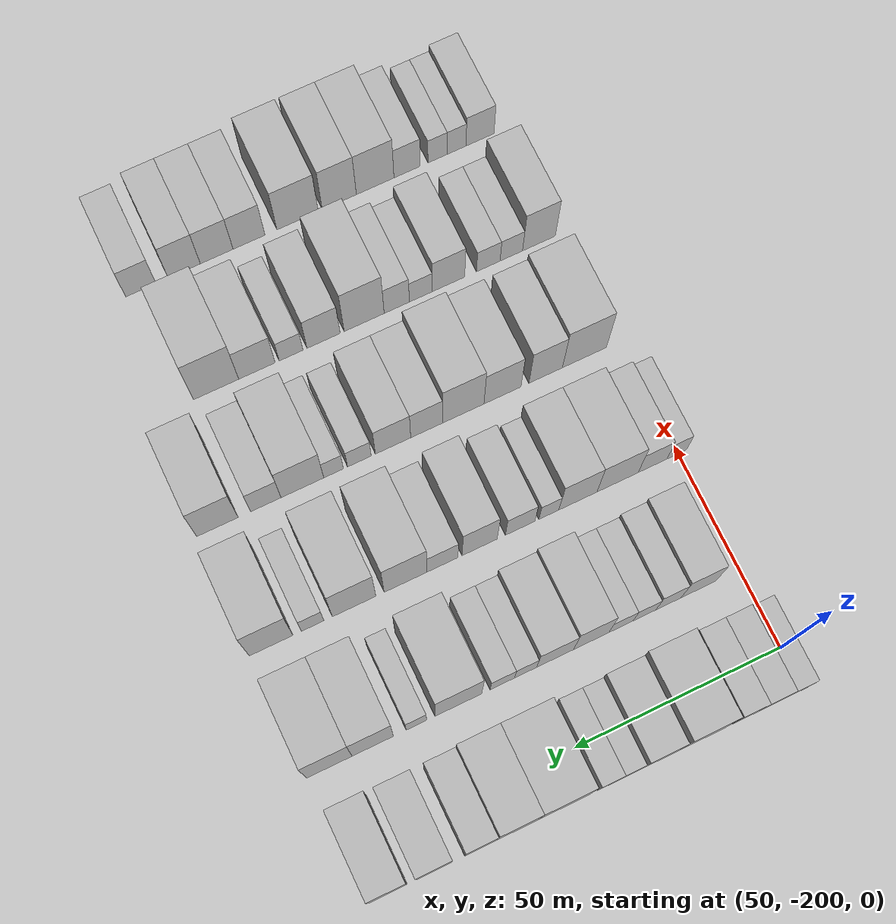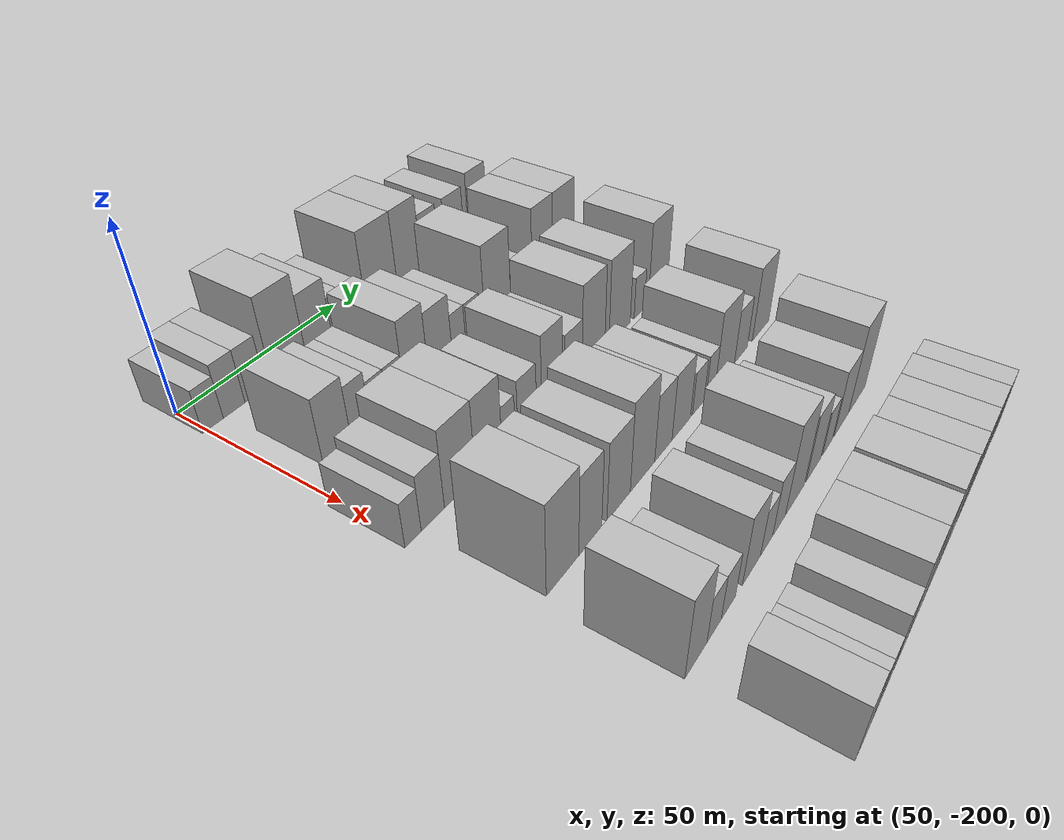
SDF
<sdf version="1.6">
 <world name="default">
  <model name="building_38">
   <static>1</static>
   <pose>50.0000 -198.3421 0 0.000000 0.000000 0.000000</pose>
   <link name="link">
    <pose>0 0 6.00 0 0 0</pose>
    <collision name="collision"><geometry><box><size>20.0000 5.8166 12.0000</size></box></geometry></collision>
    <visual name="visual">
     <cast_shadows>0</cast_shadows>
     <geometry><box><size>20.0000 5.8166 12.0000</size></box></geometry>
     <material>
      <script>
       <uri>model://HANNAS_wall/materials/scripts</uri>
       <uri>model://HANNAS_wall/materials/textures</uri>
       <name>vrc/HANNAS_wall</name>
      </script>
     </material>
    </visual>
   </link>
  </model>
  <model name="building_39">
   <static>1</static>
   <pose>50.0000 -192.2909 0 0.000000 0.000000 0.000000</pose>
   <link name="link">
    <pose>0 0 7.50 0 0 0</pose>
    <collision name="collision"><geometry><box><size>20.0000 6.2859 15.0000</size></box></geometry></collision>
    <visual name="visual">
     <cast_shadows>0</cast_shadows>
     <geometry><box><size>20.0000 6.2859 15.0000</size></box></geometry>
     <material>
      <script>
       <uri>model://HANNAS_wall/materials/scripts</uri>
       <uri>model://HANNAS_wall/materials/textures</uri>
       <name>vrc/HANNAS_wall</name>
      </script>
     </material>
    </visual>
   </link>
  </model>
  <model name="building_40">
   <static>1</static>
   <pose>50.0000 -186.0101 0 0.000000 0.000000 0.000000</pose>
   <link name="link">
    <pose>0 0 7.50 0 0 0</pose>
    <collision name="collision"><geometry><box><size>20.0000 6.2757 15.0000</size></box></geometry></collision>
    <visual name="visual">
     <cast_shadows>0</cast_shadows>
     <geometry><box><size>20.0000 6.2757 15.0000</size></box></geometry>
     <material>
      <script>
       <uri>model://HANNAS_wall/materials/scripts</uri>
       <uri>model://HANNAS_wall/materials/textures</uri>
       <name>vrc/HANNAS_wall</name>
      </script>
     </material>
    </visual>
   </link>
  </model>
  <model name="building_41">
   <static>1</static>
   <pose>50.0000 -175.3296 0 0.000000 0.000000 0.000000</pose>
   <link name="link">
    <pose>0 0 12.00 0 0 0</pose>
    <collision name="collision"><geometry><box><size>20.0000 11.0853 24.0000</size></box></geometry></collision>
    <visual name="visual">
     <cast_shadows>0</cast_shadows>
     <geometry><box><size>20.0000 11.0853 24.0000</size></box></geometry>
     <material>
      <script>
       <uri>model://HANNAS_wall/materials/scripts</uri>
       <uri>model://HANNAS_wall/materials/textures</uri>
       <name>vrc/HANNAS_wall</name>
      </script>
     </material>
    </visual>
   </link>
  </model>
  <model name="building_42">
   <static>1</static>
   <pose>50.0000 -165.3153 0 0.000000 0.000000 0.000000</pose>
   <link name="link">
    <pose>0 0 9.00 0 0 0</pose>
    <collision name="collision"><geometry><box><size>20.0000 8.9433 18.0000</size></box></geometry></collision>
    <visual name="visual">
     <cast_shadows>0</cast_shadows>
     <geometry><box><size>20.0000 8.9433 18.0000</size></box></geometry>
     <material>
      <script>
       <uri>model://HANNAS_wall/materials/scripts</uri>
       <uri>model://HANNAS_wall/materials/textures</uri>
       <name>vrc/HANNAS_wall</name>
      </script>
     </material>
    </visual>
   </link>
  </model>
  <model name="building_43">
   <static>1</static>
   <pose>50.0000 -158.3769 0 0.000000 0.000000 0.000000</pose>
   <link name="link">
    <pose>0 0 6.00 0 0 0</pose>
    <collision name="collision"><geometry><box><size>20.0000 4.9336 12.0000</size></box></geometry></collision>
    <visual name="visual">
     <cast_shadows>0</cast_shadows>
     <geometry><box><size>20.0000 4.9336 12.0000</size></box></geometry>
     <material>
      <script>
       <uri>model://HANNAS_wall/materials/scripts</uri>
       <uri>model://HANNAS_wall/materials/textures</uri>
       <name>vrc/HANNAS_wall</name>
      </script>
     </material>
    </visual>
   </link>
  </model>
  <model name="building_44">
   <static>1</static>
   <pose>50.0000 -153.1728 0 0.000000 0.000000 0.000000</pose>
   <link name="link">
    <pose>0 0 6.00 0 0 0</pose>
    <collision name="collision"><geometry><box><size>20.0000 5.4746 12.0000</size></box></geometry></collision>
    <visual name="visual">
     <cast_shadows>0</cast_shadows>
     <geometry><box><size>20.0000 5.4746 12.0000</size></box></geometry>
     <material>
      <script>
       <uri>model://HANNAS_wall/materials/scripts</uri>
       <uri>model://HANNAS_wall/materials/textures</uri>
       <name>vrc/HANNAS_wall</name>
      </script>
     </material>
    </visual>
   </link>
  </model>
  <model name="building_45">
   <static>1</static>
   <pose>50.0000 -142.4360 0 0.000000 0.000000 0.000000</pose>
   <link name="link">
    <pose>0 0 12.00 0 0 0</pose>
    <collision name="collision"><geometry><box><size>20.0000 11.9989 24.0000</size></box></geometry></collision>
    <visual name="visual">
     <cast_shadows>0</cast_shadows>
     <geometry><box><size>20.0000 11.9989 24.0000</size></box></geometry>
     <material>
      <script>
       <uri>model://HANNAS_wall/materials/scripts</uri>
       <uri>model://HANNAS_wall/materials/textures</uri>
       <name>vrc/HANNAS_wall</name>
      </script>
     </material>
    </visual>
   </link>
  </model>
  <model name="building_46">
   <static>1</static>
   <pose>50.0000 -131.5025 0 0.000000 0.000000 0.000000</pose>
   <link name="link">
    <pose>0 0 12.00 0 0 0</pose>
    <collision name="collision"><geometry><box><size>20.0000 9.8682 24.0000</size></box></geometry></collision>
    <visual name="visual">
     <cast_shadows>0</cast_shadows>
     <geometry><box><size>20.0000 9.8682 24.0000</size></box></geometry>
     <material>
      <script>
       <uri>model://HANNAS_wall/materials/scripts</uri>
       <uri>model://HANNAS_wall/materials/textures</uri>
       <name>vrc/HANNAS_wall</name>
      </script>
     </material>
    </visual>
   </link>
  </model>
  <model name="building_47">
   <static>1</static>
   <pose>50.0000 -122.8867 0 0.000000 0.000000 0.000000</pose>
   <link name="link">
    <pose>0 0 9.00 0 0 0</pose>
    <collision name="collision"><geometry><box><size>20.0000 7.3633 18.0000</size></box></geometry></collision>
    <visual name="visual">
     <cast_shadows>0</cast_shadows>
     <geometry><box><size>20.0000 7.3633 18.0000</size></box></geometry>
     <material>
      <script>
       <uri>model://HANNAS_wall/materials/scripts</uri>
       <uri>model://HANNAS_wall/materials/textures</uri>
       <name>vrc/HANNAS_wall</name>
      </script>
     </material>
    </visual>
   </link>
  </model>
  <model name="building_48">
   <static>1</static>
   <pose>50.0000 -112.0469 0 0.000000 0.000000 0.000000</pose>
   <link name="link">
    <pose>0 0 9.00 0 0 0</pose>
    <collision name="collision"><geometry><box><size>20.0000 8.3164 18.0000</size></box></geometry></collision>
    <visual name="visual">
     <cast_shadows>0</cast_shadows>
     <geometry><box><size>20.0000 8.3164 18.0000</size></box></geometry>
     <material>
      <script>
       <uri>model://HANNAS_wall/materials/scripts</uri>
       <uri>model://HANNAS_wall/materials/textures</uri>
       <name>vrc/HANNAS_wall</name>
      </script>
     </material>
    </visual>
   </link>
  </model>
  <model name="building_49">
   <static>1</static>
   <pose>50.0000 -101.4972 0 0.000000 0.000000 0.000000</pose>
   <link name="link">
    <pose>0 0 10.50 0 0 0</pose>
    <collision name="collision"><geometry><box><size>20.0000 8.7831 21.0000</size></box></geometry></collision>
    <visual name="visual">
     <cast_shadows>0</cast_shadows>
     <geometry><box><size>20.0000 8.7831 21.0000</size></box></geometry>
     <material>
      <script>
       <uri>model://HANNAS_wall/materials/scripts</uri>
       <uri>model://HANNAS_wall/materials/textures</uri>
       <name>vrc/HANNAS_wall</name>
      </script>
     </material>
    </visual>
   </link>
  </model>
  <model name="building_158">
   <static>1</static>
   <pose>79.0000 -189.7963 0 0.000000 0.000000 0.000000</pose>
   <link name="link">
    <pose>0 0 9.00 0 0 0</pose>
    <collision name="collision"><geometry><box><size>20.0000 8.6118 18.0000</size></box></geometry></collision>
    <visual name="visual">
     <cast_shadows>0</cast_shadows>
     <geometry><box><size>20.0000 8.6118 18.0000</size></box></geometry>
     <material>
      <script>
       <uri>model://HANNAS_wall/materials/scripts</uri>
       <uri>model://HANNAS_wall/materials/textures</uri>
       <name>vrc/HANNAS_wall</name>
      </script>
     </material>
    </visual>
   </link>
  </model>
  <model name="building_159">
   <static>1</static>
   <pose>79.0000 -182.4054 0 0.000000 0.000000 0.000000</pose>
   <link name="link">
    <pose>0 0 7.50 0 0 0</pose>
    <collision name="collision"><geometry><box><size>20.0000 6.1700 15.0000</size></box></geometry></collision>
    <visual name="visual">
     <cast_shadows>0</cast_shadows>
     <geometry><box><size>20.0000 6.1700 15.0000</size></box></geometry>
     <material>
      <script>
       <uri>model://HANNAS_wall/materials/scripts</uri>
       <uri>model://HANNAS_wall/materials/textures</uri>
       <name>vrc/HANNAS_wall</name>
      </script>
     </material>
    </visual>
   </link>
  </model>
  <model name="building_160">
   <static>1</static>
   <pose>79.0000 -176.5558 0 0.000000 0.000000 0.000000</pose>
   <link name="link">
    <pose>0 0 6.00 0 0 0</pose>
    <collision name="collision"><geometry><box><size>20.0000 5.5291 12.0000</size></box></geometry></collision>
    <visual name="visual">
     <cast_shadows>0</cast_shadows>
     <geometry><box><size>20.0000 5.5291 12.0000</size></box></geometry>
     <material>
      <script>
       <uri>model://HANNAS_wall/materials/scripts</uri>
       <uri>model://HANNAS_wall/materials/textures</uri>
       <name>vrc/HANNAS_wall</name>
      </script>
     </material>
    </visual>
   </link>
  </model>
  <model name="building_161">
   <static>1</static>
   <pose>79.0000 -170.8311 0 0.000000 0.000000 0.000000</pose>
   <link name="link">
    <pose>0 0 6.00 0 0 0</pose>
    <collision name="collision"><geometry><box><size>20.0000 5.9202 12.0000</size></box></geometry></collision>
    <visual name="visual">
     <cast_shadows>0</cast_shadows>
     <geometry><box><size>20.0000 5.9202 12.0000</size></box></geometry>
     <material>
      <script>
       <uri>model://HANNAS_wall/materials/scripts</uri>
       <uri>model://HANNAS_wall/materials/textures</uri>
       <name>vrc/HANNAS_wall</name>
      </script>
     </material>
    </visual>
   </link>
  </model>
  <model name="building_162">
   <static>1</static>
   <pose>79.0000 -163.5739 0 0.000000 0.000000 0.000000</pose>
   <link name="link">
    <pose>0 0 10.50 0 0 0</pose>
    <collision name="collision"><geometry><box><size>20.0000 8.5942 21.0000</size></box></geometry></collision>
    <visual name="visual">
     <cast_shadows>0</cast_shadows>
     <geometry><box><size>20.0000 8.5942 21.0000</size></box></geometry>
     <material>
      <script>
       <uri>model://HANNAS_wall/materials/scripts</uri>
       <uri>model://HANNAS_wall/materials/textures</uri>
       <name>vrc/HANNAS_wall</name>
      </script>
     </material>
    </visual>
   </link>
  </model>
  <model name="building_163">
   <static>1</static>
   <pose>79.0000 -154.8268 0 0.000000 0.000000 0.000000</pose>
   <link name="link">
    <pose>0 0 9.00 0 0 0</pose>
    <collision name="collision"><geometry><box><size>20.0000 8.8999 18.0000</size></box></geometry></collision>
    <visual name="visual">
     <cast_shadows>0</cast_shadows>
     <geometry><box><size>20.0000 8.8999 18.0000</size></box></geometry>
     <material>
      <script>
       <uri>model://HANNAS_wall/materials/scripts</uri>
       <uri>model://HANNAS_wall/materials/textures</uri>
       <name>vrc/HANNAS_wall</name>
      </script>
     </material>
    </visual>
   </link>
  </model>
  <model name="building_164">
   <static>1</static>
   <pose>79.0000 -147.7341 0 0.000000 0.000000 0.000000</pose>
   <link name="link">
    <pose>0 0 6.00 0 0 0</pose>
    <collision name="collision"><geometry><box><size>20.0000 5.2857 12.0000</size></box></geometry></collision>
    <visual name="visual">
     <cast_shadows>0</cast_shadows>
     <geometry><box><size>20.0000 5.2857 12.0000</size></box></geometry>
     <material>
      <script>
       <uri>model://HANNAS_wall/materials/scripts</uri>
       <uri>model://HANNAS_wall/materials/textures</uri>
       <name>vrc/HANNAS_wall</name>
      </script>
     </material>
    </visual>
   </link>
  </model>
  <model name="building_165">
   <static>1</static>
   <pose>79.0000 -142.1593 0 0.000000 0.000000 0.000000</pose>
   <link name="link">
    <pose>0 0 6.00 0 0 0</pose>
    <collision name="collision"><geometry><box><size>20.0000 5.8639 12.0000</size></box></geometry></collision>
    <visual name="visual">
     <cast_shadows>0</cast_shadows>
     <geometry><box><size>20.0000 5.8639 12.0000</size></box></geometry>
     <material>
      <script>
       <uri>model://HANNAS_wall/materials/scripts</uri>
       <uri>model://HANNAS_wall/materials/textures</uri>
       <name>vrc/HANNAS_wall</name>
      </script>
     </material>
    </visual>
   </link>
  </model>
  <model name="building_166">
   <static>1</static>
   <pose>79.0000 -131.6748 0 0.000000 0.000000 0.000000</pose>
   <link name="link">
    <pose>0 0 12.00 0 0 0</pose>
    <collision name="collision"><geometry><box><size>20.0000 11.1053 24.0000</size></box></geometry></collision>
    <visual name="visual">
     <cast_shadows>0</cast_shadows>
     <geometry><box><size>20.0000 11.1053 24.0000</size></box></geometry>
     <material>
      <script>
       <uri>model://HANNAS_wall/materials/scripts</uri>
       <uri>model://HANNAS_wall/materials/textures</uri>
       <name>vrc/HANNAS_wall</name>
      </script>
     </material>
    </visual>
   </link>
  </model>
  <model name="building_167">
   <static>1</static>
   <pose>79.0000 -121.7178 0 0.000000 0.000000 0.000000</pose>
   <link name="link">
    <pose>0 0 6.00 0 0 0</pose>
    <collision name="collision"><geometry><box><size>20.0000 4.8087 12.0000</size></box></geometry></collision>
    <visual name="visual">
     <cast_shadows>0</cast_shadows>
     <geometry><box><size>20.0000 4.8087 12.0000</size></box></geometry>
     <material>
      <script>
       <uri>model://HANNAS_wall/materials/scripts</uri>
       <uri>model://HANNAS_wall/materials/textures</uri>
       <name>vrc/HANNAS_wall</name>
      </script>
     </material>
    </visual>
   </link>
  </model>
  <model name="building_168">
   <static>1</static>
   <pose>79.0000 -111.4568 0 0.000000 0.000000 0.000000</pose>
   <link name="link">
    <pose>0 0 12.00 0 0 0</pose>
    <collision name="collision"><geometry><box><size>20.0000 9.7131 24.0000</size></box></geometry></collision>
    <visual name="visual">
     <cast_shadows>0</cast_shadows>
     <geometry><box><size>20.0000 9.7131 24.0000</size></box></geometry>
     <material>
      <script>
       <uri>model://HANNAS_wall/materials/scripts</uri>
       <uri>model://HANNAS_wall/materials/textures</uri>
       <name>vrc/HANNAS_wall</name>
      </script>
     </material>
    </visual>
   </link>
  </model>
  <model name="building_169">
   <static>1</static>
   <pose>79.0000 -101.2999 0 0.000000 0.000000 0.000000</pose>
   <link name="link">
    <pose>0 0 12.00 0 0 0</pose>
    <collision name="collision"><geometry><box><size>20.0000 10.6006 24.0000</size></box></geometry></collision>
    <visual name="visual">
     <cast_shadows>0</cast_shadows>
     <geometry><box><size>20.0000 10.6006 24.0000</size></box></geometry>
     <material>
      <script>
       <uri>model://HANNAS_wall/materials/scripts</uri>
       <uri>model://HANNAS_wall/materials/textures</uri>
       <name>vrc/HANNAS_wall</name>
      </script>
     </material>
    </visual>
   </link>
  </model>
  <model name="building_273">
   <static>1</static>
   <pose>108.0000 -199.5737 0 0.000000 0.000000 0.000000</pose>
   <link name="link">
    <pose>0 0 6.00 0 0 0</pose>
    <collision name="collision"><geometry><box><size>20.0000 4.8942 12.0000</size></box></geometry></collision>
    <visual name="visual">
     <cast_shadows>0</cast_shadows>
     <geometry><box><size>20.0000 4.8942 12.0000</size></box></geometry>
     <material>
      <script>
       <uri>model://HANNAS_wall/materials/scripts</uri>
       <uri>model://HANNAS_wall/materials/textures</uri>
       <name>vrc/HANNAS_wall</name>
      </script>
     </material>
    </visual>
   </link>
  </model>
  <model name="building_274">
   <static>1</static>
   <pose>108.0000 -193.5190 0 0.000000 0.000000 0.000000</pose>
   <link name="link">
    <pose>0 0 7.50 0 0 0</pose>
    <collision name="collision"><geometry><box><size>20.0000 7.2151 15.0000</size></box></geometry></collision>
    <visual name="visual">
     <cast_shadows>0</cast_shadows>
     <geometry><box><size>20.0000 7.2151 15.0000</size></box></geometry>
     <material>
      <script>
       <uri>model://HANNAS_wall/materials/scripts</uri>
       <uri>model://HANNAS_wall/materials/textures</uri>
       <name>vrc/HANNAS_wall</name>
      </script>
     </material>
    </visual>
   </link>
  </model>
  <model name="building_275">
   <static>1</static>
   <pose>108.0000 -184.7804 0 0.000000 0.000000 0.000000</pose>
   <link name="link">
    <pose>0 0 10.50 0 0 0</pose>
    <collision name="collision"><geometry><box><size>20.0000 10.2622 21.0000</size></box></geometry></collision>
    <visual name="visual">
     <cast_shadows>0</cast_shadows>
     <geometry><box><size>20.0000 10.2622 21.0000</size></box></geometry>
     <material>
      <script>
       <uri>model://HANNAS_wall/materials/scripts</uri>
       <uri>model://HANNAS_wall/materials/textures</uri>
       <name>vrc/HANNAS_wall</name>
      </script>
     </material>
    </visual>
   </link>
  </model>
  <model name="building_276">
   <static>1</static>
   <pose>108.0000 -174.9422 0 0.000000 0.000000 0.000000</pose>
   <link name="link">
    <pose>0 0 10.50 0 0 0</pose>
    <collision name="collision"><geometry><box><size>20.0000 9.4140 21.0000</size></box></geometry></collision>
    <visual name="visual">
     <cast_shadows>0</cast_shadows>
     <geometry><box><size>20.0000 9.4140 21.0000</size></box></geometry>
     <material>
      <script>
       <uri>model://HANNAS_wall/materials/scripts</uri>
       <uri>model://HANNAS_wall/materials/textures</uri>
       <name>vrc/HANNAS_wall</name>
      </script>
     </material>
    </visual>
   </link>
  </model>
  <model name="building_277">
   <static>1</static>
   <pose>108.0000 -167.7898 0 0.000000 0.000000 0.000000</pose>
   <link name="link">
    <pose>0 0 6.00 0 0 0</pose>
    <collision name="collision"><geometry><box><size>20.0000 4.8909 12.0000</size></box></geometry></collision>
    <visual name="visual">
     <cast_shadows>0</cast_shadows>
     <geometry><box><size>20.0000 4.8909 12.0000</size></box></geometry>
     <material>
      <script>
       <uri>model://HANNAS_wall/materials/scripts</uri>
       <uri>model://HANNAS_wall/materials/textures</uri>
       <name>vrc/HANNAS_wall</name>
      </script>
     </material>
    </visual>
   </link>
  </model>
  <model name="building_278">
   <static>1</static>
   <pose>108.0000 -160.7300 0 0.000000 0.000000 0.000000</pose>
   <link name="link">
    <pose>0 0 7.50 0 0 0</pose>
    <collision name="collision"><geometry><box><size>20.0000 7.2287 15.0000</size></box></geometry></collision>
    <visual name="visual">
     <cast_shadows>0</cast_shadows>
     <geometry><box><size>20.0000 7.2287 15.0000</size></box></geometry>
     <material>
      <script>
       <uri>model://HANNAS_wall/materials/scripts</uri>
       <uri>model://HANNAS_wall/materials/textures</uri>
       <name>vrc/HANNAS_wall</name>
      </script>
     </material>
    </visual>
   </link>
  </model>
  <model name="building_279">
   <static>1</static>
   <pose>108.0000 -150.8230 0 0.000000 0.000000 0.000000</pose>
   <link name="link">
    <pose>0 0 10.50 0 0 0</pose>
    <collision name="collision"><geometry><box><size>20.0000 8.5853 21.0000</size></box></geometry></collision>
    <visual name="visual">
     <cast_shadows>0</cast_shadows>
     <geometry><box><size>20.0000 8.5853 21.0000</size></box></geometry>
     <material>
      <script>
       <uri>model://HANNAS_wall/materials/scripts</uri>
       <uri>model://HANNAS_wall/materials/textures</uri>
       <name>vrc/HANNAS_wall</name>
      </script>
     </material>
    </visual>
   </link>
  </model>
  <model name="building_280">
   <static>1</static>
   <pose>108.0000 -141.7910 0 0.000000 0.000000 0.000000</pose>
   <link name="link">
    <pose>0 0 7.50 0 0 0</pose>
    <collision name="collision"><geometry><box><size>20.0000 7.4786 15.0000</size></box></geometry></collision>
    <visual name="visual">
     <cast_shadows>0</cast_shadows>
     <geometry><box><size>20.0000 7.4786 15.0000</size></box></geometry>
     <material>
      <script>
       <uri>model://HANNAS_wall/materials/scripts</uri>
       <uri>model://HANNAS_wall/materials/textures</uri>
       <name>vrc/HANNAS_wall</name>
      </script>
     </material>
    </visual>
   </link>
  </model>
  <model name="building_281">
   <static>1</static>
   <pose>108.0000 -132.8842 0 0.000000 0.000000 0.000000</pose>
   <link name="link">
    <pose>0 0 12.00 0 0 0</pose>
    <collision name="collision"><geometry><box><size>20.0000 10.3351 24.0000</size></box></geometry></collision>
    <visual name="visual">
     <cast_shadows>0</cast_shadows>
     <geometry><box><size>20.0000 10.3351 24.0000</size></box></geometry>
     <material>
      <script>
       <uri>model://HANNAS_wall/materials/scripts</uri>
       <uri>model://HANNAS_wall/materials/textures</uri>
       <name>vrc/HANNAS_wall</name>
      </script>
     </material>
    </visual>
   </link>
  </model>
  <model name="building_282">
   <static>1</static>
   <pose>108.0000 -120.5026 0 0.000000 0.000000 0.000000</pose>
   <link name="link">
    <pose>0 0 12.00 0 0 0</pose>
    <collision name="collision"><geometry><box><size>20.0000 10.4281 24.0000</size></box></geometry></collision>
    <visual name="visual">
     <cast_shadows>0</cast_shadows>
     <geometry><box><size>20.0000 10.4281 24.0000</size></box></geometry>
     <material>
      <script>
       <uri>model://HANNAS_wall/materials/scripts</uri>
       <uri>model://HANNAS_wall/materials/textures</uri>
       <name>vrc/HANNAS_wall</name>
      </script>
     </material>
    </visual>
   </link>
  </model>
  <model name="building_283">
   <static>1</static>
   <pose>108.0000 -110.5968 0 0.000000 0.000000 0.000000</pose>
   <link name="link">
    <pose>0 0 6.00 0 0 0</pose>
    <collision name="collision"><geometry><box><size>20.0000 5.3834 12.0000</size></box></geometry></collision>
    <visual name="visual">
     <cast_shadows>0</cast_shadows>
     <geometry><box><size>20.0000 5.3834 12.0000</size></box></geometry>
     <material>
      <script>
       <uri>model://HANNAS_wall/materials/scripts</uri>
       <uri>model://HANNAS_wall/materials/textures</uri>
       <name>vrc/HANNAS_wall</name>
      </script>
     </material>
    </visual>
   </link>
  </model>
  <model name="building_284">
   <static>1</static>
   <pose>108.0000 -100.7277 0 0.000000 0.000000 0.000000</pose>
   <link name="link">
    <pose>0 0 12.00 0 0 0</pose>
    <collision name="collision"><geometry><box><size>20.0000 10.3549 24.0000</size></box></geometry></collision>
    <visual name="visual">
     <cast_shadows>0</cast_shadows>
     <geometry><box><size>20.0000 10.3549 24.0000</size></box></geometry>
     <material>
      <script>
       <uri>model://HANNAS_wall/materials/scripts</uri>
       <uri>model://HANNAS_wall/materials/textures</uri>
       <name>vrc/HANNAS_wall</name>
      </script>
     </material>
    </visual>
   </link>
  </model>
  <model name="building_384">
   <static>1</static>
   <pose>137.0000 -191.1939 0 0.000000 0.000000 0.000000</pose>
   <link name="link">
    <pose>0 0 12.00 0 0 0</pose>
    <collision name="collision"><geometry><box><size>20.0000 11.1136 24.0000</size></box></geometry></collision>
    <visual name="visual">
     <cast_shadows>0</cast_shadows>
     <geometry><box><size>20.0000 11.1136 24.0000</size></box></geometry>
     <material>
      <script>
       <uri>model://HANNAS_wall/materials/scripts</uri>
       <uri>model://HANNAS_wall/materials/textures</uri>
       <name>vrc/HANNAS_wall</name>
      </script>
     </material>
    </visual>
   </link>
  </model>
  <model name="building_385">
   <static>1</static>
   <pose>137.0000 -181.4329 0 0.000000 0.000000 0.000000</pose>
   <link name="link">
    <pose>0 0 10.50 0 0 0</pose>
    <collision name="collision"><geometry><box><size>20.0000 8.4084 21.0000</size></box></geometry></collision>
    <visual name="visual">
     <cast_shadows>0</cast_shadows>
     <geometry><box><size>20.0000 8.4084 21.0000</size></box></geometry>
     <material>
      <script>
       <uri>model://HANNAS_wall/materials/scripts</uri>
       <uri>model://HANNAS_wall/materials/textures</uri>
       <name>vrc/HANNAS_wall</name>
      </script>
     </material>
    </visual>
   </link>
  </model>
  <model name="building_386">
   <static>1</static>
   <pose>137.0000 -170.6042 0 0.000000 0.000000 0.000000</pose>
   <link name="link">
    <pose>0 0 10.50 0 0 0</pose>
    <collision name="collision"><geometry><box><size>20.0000 9.2490 21.0000</size></box></geometry></collision>
    <visual name="visual">
     <cast_shadows>0</cast_shadows>
     <geometry><box><size>20.0000 9.2490 21.0000</size></box></geometry>
     <material>
      <script>
       <uri>model://HANNAS_wall/materials/scripts</uri>
       <uri>model://HANNAS_wall/materials/textures</uri>
       <name>vrc/HANNAS_wall</name>
      </script>
     </material>
    </visual>
   </link>
  </model>
  <model name="building_387">
   <static>1</static>
   <pose>137.0000 -160.8103 0 0.000000 0.000000 0.000000</pose>
   <link name="link">
    <pose>0 0 12.00 0 0 0</pose>
    <collision name="collision"><geometry><box><size>20.0000 10.3386 24.0000</size></box></geometry></collision>
    <visual name="visual">
     <cast_shadows>0</cast_shadows>
     <geometry><box><size>20.0000 10.3386 24.0000</size></box></geometry>
     <material>
      <script>
       <uri>model://HANNAS_wall/materials/scripts</uri>
       <uri>model://HANNAS_wall/materials/textures</uri>
       <name>vrc/HANNAS_wall</name>
      </script>
     </material>
    </visual>
   </link>
  </model>
  <model name="building_388">
   <static>1</static>
   <pose>137.0000 -151.7376 0 0.000000 0.000000 0.000000</pose>
   <link name="link">
    <pose>0 0 9.00 0 0 0</pose>
    <collision name="collision"><geometry><box><size>20.0000 7.8068 18.0000</size></box></geometry></collision>
    <visual name="visual">
     <cast_shadows>0</cast_shadows>
     <geometry><box><size>20.0000 7.8068 18.0000</size></box></geometry>
     <material>
      <script>
       <uri>model://HANNAS_wall/materials/scripts</uri>
       <uri>model://HANNAS_wall/materials/textures</uri>
       <name>vrc/HANNAS_wall</name>
      </script>
     </material>
    </visual>
   </link>
  </model>
  <model name="building_389">
   <static>1</static>
   <pose>137.0000 -143.4853 0 0.000000 0.000000 0.000000</pose>
   <link name="link">
    <pose>0 0 9.00 0 0 0</pose>
    <collision name="collision"><geometry><box><size>20.0000 8.6979 18.0000</size></box></geometry></collision>
    <visual name="visual">
     <cast_shadows>0</cast_shadows>
     <geometry><box><size>20.0000 8.6979 18.0000</size></box></geometry>
     <material>
      <script>
       <uri>model://HANNAS_wall/materials/scripts</uri>
       <uri>model://HANNAS_wall/materials/textures</uri>
       <name>vrc/HANNAS_wall</name>
      </script>
     </material>
    </visual>
   </link>
  </model>
  <model name="building_390">
   <static>1</static>
   <pose>137.0000 -135.2362 0 0.000000 0.000000 0.000000</pose>
   <link name="link">
    <pose>0 0 6.00 0 0 0</pose>
    <collision name="collision"><geometry><box><size>20.0000 5.8004 12.0000</size></box></geometry></collision>
    <visual name="visual">
     <cast_shadows>0</cast_shadows>
     <geometry><box><size>20.0000 5.8004 12.0000</size></box></geometry>
     <material>
      <script>
       <uri>model://HANNAS_wall/materials/scripts</uri>
       <uri>model://HANNAS_wall/materials/textures</uri>
       <name>vrc/HANNAS_wall</name>
      </script>
     </material>
    </visual>
   </link>
  </model>
  <model name="building_391">
   <static>1</static>
   <pose>137.0000 -128.9263 0 0.000000 0.000000 0.000000</pose>
   <link name="link">
    <pose>0 0 6.00 0 0 0</pose>
    <collision name="collision"><geometry><box><size>20.0000 4.8194 12.0000</size></box></geometry></collision>
    <visual name="visual">
     <cast_shadows>0</cast_shadows>
     <geometry><box><size>20.0000 4.8194 12.0000</size></box></geometry>
     <material>
      <script>
       <uri>model://HANNAS_wall/materials/scripts</uri>
       <uri>model://HANNAS_wall/materials/textures</uri>
       <name>vrc/HANNAS_wall</name>
      </script>
     </material>
    </visual>
   </link>
  </model>
  <model name="building_392">
   <static>1</static>
   <pose>137.0000 -121.3165 0 0.000000 0.000000 0.000000</pose>
   <link name="link">
    <pose>0 0 10.50 0 0 0</pose>
    <collision name="collision"><geometry><box><size>20.0000 10.4000 21.0000</size></box></geometry></collision>
    <visual name="visual">
     <cast_shadows>0</cast_shadows>
     <geometry><box><size>20.0000 10.4000 21.0000</size></box></geometry>
     <material>
      <script>
       <uri>model://HANNAS_wall/materials/scripts</uri>
       <uri>model://HANNAS_wall/materials/textures</uri>
       <name>vrc/HANNAS_wall</name>
      </script>
     </material>
    </visual>
   </link>
  </model>
  <model name="building_393">
   <static>1</static>
   <pose>137.0000 -112.4542 0 0.000000 0.000000 0.000000</pose>
   <link name="link">
    <pose>0 0 7.50 0 0 0</pose>
    <collision name="collision"><geometry><box><size>20.0000 7.3247 15.0000</size></box></geometry></collision>
    <visual name="visual">
     <cast_shadows>0</cast_shadows>
     <geometry><box><size>20.0000 7.3247 15.0000</size></box></geometry>
     <material>
      <script>
       <uri>model://HANNAS_wall/materials/scripts</uri>
       <uri>model://HANNAS_wall/materials/textures</uri>
       <name>vrc/HANNAS_wall</name>
      </script>
     </material>
    </visual>
   </link>
  </model>
  <model name="building_394">
   <static>1</static>
   <pose>137.0000 -100.8084 0 0.000000 0.000000 0.000000</pose>
   <link name="link">
    <pose>0 0 10.50 0 0 0</pose>
    <collision name="collision"><geometry><box><size>20.0000 9.9668 21.0000</size></box></geometry></collision>
    <visual name="visual">
     <cast_shadows>0</cast_shadows>
     <geometry><box><size>20.0000 9.9668 21.0000</size></box></geometry>
     <material>
      <script>
       <uri>model://HANNAS_wall/materials/scripts</uri>
       <uri>model://HANNAS_wall/materials/textures</uri>
       <name>vrc/HANNAS_wall</name>
      </script>
     </material>
    </visual>
   </link>
  </model>
  <model name="building_493">
   <static>1</static>
   <pose>166.0000 -194.1189 0 0.000000 0.000000 0.000000</pose>
   <link name="link">
    <pose>0 0 10.50 0 0 0</pose>
    <collision name="collision"><geometry><box><size>20.0000 8.4056 21.0000</size></box></geometry></collision>
    <visual name="visual">
     <cast_shadows>0</cast_shadows>
     <geometry><box><size>20.0000 8.4056 21.0000</size></box></geometry>
     <material>
      <script>
       <uri>model://HANNAS_wall/materials/scripts</uri>
       <uri>model://HANNAS_wall/materials/textures</uri>
       <name>vrc/HANNAS_wall</name>
      </script>
     </material>
    </visual>
   </link>
  </model>
  <model name="building_494">
   <static>1</static>
   <pose>166.0000 -187.0522 0 0.000000 0.000000 0.000000</pose>
   <link name="link">
    <pose>0 0 6.00 0 0 0</pose>
    <collision name="collision"><geometry><box><size>20.0000 5.7277 12.0000</size></box></geometry></collision>
    <visual name="visual">
     <cast_shadows>0</cast_shadows>
     <geometry><box><size>20.0000 5.7277 12.0000</size></box></geometry>
     <material>
      <script>
       <uri>model://HANNAS_wall/materials/scripts</uri>
       <uri>model://HANNAS_wall/materials/textures</uri>
       <name>vrc/HANNAS_wall</name>
      </script>
     </material>
    </visual>
   </link>
  </model>
  <model name="building_495">
   <static>1</static>
   <pose>166.0000 -181.1929 0 0.000000 0.000000 0.000000</pose>
   <link name="link">
    <pose>0 0 6.00 0 0 0</pose>
    <collision name="collision"><geometry><box><size>20.0000 5.9909 12.0000</size></box></geometry></collision>
    <visual name="visual">
     <cast_shadows>0</cast_shadows>
     <geometry><box><size>20.0000 5.9909 12.0000</size></box></geometry>
     <material>
      <script>
       <uri>model://HANNAS_wall/materials/scripts</uri>
       <uri>model://HANNAS_wall/materials/textures</uri>
       <name>vrc/HANNAS_wall</name>
      </script>
     </material>
    </visual>
   </link>
  </model>
  <model name="building_496">
   <static>1</static>
   <pose>166.0000 -171.1128 0 0.000000 0.000000 0.000000</pose>
   <link name="link">
    <pose>0 0 9.00 0 0 0</pose>
    <collision name="collision"><geometry><box><size>20.0000 8.1691 18.0000</size></box></geometry></collision>
    <visual name="visual">
     <cast_shadows>0</cast_shadows>
     <geometry><box><size>20.0000 8.1691 18.0000</size></box></geometry>
     <material>
      <script>
       <uri>model://HANNAS_wall/materials/scripts</uri>
       <uri>model://HANNAS_wall/materials/textures</uri>
       <name>vrc/HANNAS_wall</name>
      </script>
     </material>
    </visual>
   </link>
  </model>
  <model name="building_497">
   <static>1</static>
   <pose>166.0000 -164.1345 0 0.000000 0.000000 0.000000</pose>
   <link name="link">
    <pose>0 0 6.00 0 0 0</pose>
    <collision name="collision"><geometry><box><size>20.0000 5.7875 12.0000</size></box></geometry></collision>
    <visual name="visual">
     <cast_shadows>0</cast_shadows>
     <geometry><box><size>20.0000 5.7875 12.0000</size></box></geometry>
     <material>
      <script>
       <uri>model://HANNAS_wall/materials/scripts</uri>
       <uri>model://HANNAS_wall/materials/textures</uri>
       <name>vrc/HANNAS_wall</name>
      </script>
     </material>
    </visual>
   </link>
  </model>
  <model name="building_498">
   <static>1</static>
   <pose>166.0000 -158.0689 0 0.000000 0.000000 0.000000</pose>
   <link name="link">
    <pose>0 0 7.50 0 0 0</pose>
    <collision name="collision"><geometry><box><size>20.0000 6.3436 15.0000</size></box></geometry></collision>
    <visual name="visual">
     <cast_shadows>0</cast_shadows>
     <geometry><box><size>20.0000 6.3436 15.0000</size></box></geometry>
     <material>
      <script>
       <uri>model://HANNAS_wall/materials/scripts</uri>
       <uri>model://HANNAS_wall/materials/textures</uri>
       <name>vrc/HANNAS_wall</name>
      </script>
     </material>
    </visual>
   </link>
  </model>
  <model name="building_499">
   <static>1</static>
   <pose>166.0000 -149.8991 0 0.000000 0.000000 0.000000</pose>
   <link name="link">
    <pose>0 0 12.00 0 0 0</pose>
    <collision name="collision"><geometry><box><size>20.0000 9.9960 24.0000</size></box></geometry></collision>
    <visual name="visual">
     <cast_shadows>0</cast_shadows>
     <geometry><box><size>20.0000 9.9960 24.0000</size></box></geometry>
     <material>
      <script>
       <uri>model://HANNAS_wall/materials/scripts</uri>
       <uri>model://HANNAS_wall/materials/textures</uri>
       <name>vrc/HANNAS_wall</name>
      </script>
     </material>
    </visual>
   </link>
  </model>
  <model name="building_500">
   <static>1</static>
   <pose>166.0000 -139.7730 0 0.000000 0.000000 0.000000</pose>
   <link name="link">
    <pose>0 0 9.00 0 0 0</pose>
    <collision name="collision"><geometry><box><size>20.0000 8.2562 18.0000</size></box></geometry></collision>
    <visual name="visual">
     <cast_shadows>0</cast_shadows>
     <geometry><box><size>20.0000 8.2562 18.0000</size></box></geometry>
     <material>
      <script>
       <uri>model://HANNAS_wall/materials/scripts</uri>
       <uri>model://HANNAS_wall/materials/textures</uri>
       <name>vrc/HANNAS_wall</name>
      </script>
     </material>
    </visual>
   </link>
  </model>
  <model name="building_501">
   <static>1</static>
   <pose>166.0000 -131.7081 0 0.000000 0.000000 0.000000</pose>
   <link name="link">
    <pose>0 0 6.00 0 0 0</pose>
    <collision name="collision"><geometry><box><size>20.0000 5.8737 12.0000</size></box></geometry></collision>
    <visual name="visual">
     <cast_shadows>0</cast_shadows>
     <geometry><box><size>20.0000 5.8737 12.0000</size></box></geometry>
     <material>
      <script>
       <uri>model://HANNAS_wall/materials/scripts</uri>
       <uri>model://HANNAS_wall/materials/textures</uri>
       <name>vrc/HANNAS_wall</name>
      </script>
     </material>
    </visual>
   </link>
  </model>
  <model name="building_502">
   <static>1</static>
   <pose>166.0000 -123.2778 0 0.000000 0.000000 0.000000</pose>
   <link name="link">
    <pose>0 0 9.00 0 0 0</pose>
    <collision name="collision"><geometry><box><size>20.0000 8.9869 18.0000</size></box></geometry></collision>
    <visual name="visual">
     <cast_shadows>0</cast_shadows>
     <geometry><box><size>20.0000 8.9869 18.0000</size></box></geometry>
     <material>
      <script>
       <uri>model://HANNAS_wall/materials/scripts</uri>
       <uri>model://HANNAS_wall/materials/textures</uri>
       <name>vrc/HANNAS_wall</name>
      </script>
     </material>
    </visual>
   </link>
  </model>
  <model name="building_503">
   <static>1</static>
   <pose>166.0000 -113.2178 0 0.000000 0.000000 0.000000</pose>
   <link name="link">
    <pose>0 0 12.00 0 0 0</pose>
    <collision name="collision"><geometry><box><size>20.0000 11.1331 24.0000</size></box></geometry></collision>
    <visual name="visual">
     <cast_shadows>0</cast_shadows>
     <geometry><box><size>20.0000 11.1331 24.0000</size></box></geometry>
     <material>
      <script>
       <uri>model://HANNAS_wall/materials/scripts</uri>
       <uri>model://HANNAS_wall/materials/textures</uri>
       <name>vrc/HANNAS_wall</name>
      </script>
     </material>
    </visual>
   </link>
  </model>
  <model name="building_611">
   <static>1</static>
   <pose>195.0000 -193.1585 0 0.000000 0.000000 0.000000</pose>
   <link name="link">
    <pose>0 0 7.50 0 0 0</pose>
    <collision name="collision"><geometry><box><size>20.0000 7.2732 15.0000</size></box></geometry></collision>
    <visual name="visual">
     <cast_shadows>0</cast_shadows>
     <geometry><box><size>20.0000 7.2732 15.0000</size></box></geometry>
     <material>
      <script>
       <uri>model://HANNAS_wall/materials/scripts</uri>
       <uri>model://HANNAS_wall/materials/textures</uri>
       <name>vrc/HANNAS_wall</name>
      </script>
     </material>
    </visual>
   </link>
  </model>
  <model name="building_612">
   <static>1</static>
   <pose>195.0000 -187.0888 0 0.000000 0.000000 0.000000</pose>
   <link name="link">
    <pose>0 0 6.00 0 0 0</pose>
    <collision name="collision"><geometry><box><size>20.0000 4.8663 12.0000</size></box></geometry></collision>
    <visual name="visual">
     <cast_shadows>0</cast_shadows>
     <geometry><box><size>20.0000 4.8663 12.0000</size></box></geometry>
     <material>
      <script>
       <uri>model://HANNAS_wall/materials/scripts</uri>
       <uri>model://HANNAS_wall/materials/textures</uri>
       <name>vrc/HANNAS_wall</name>
      </script>
     </material>
    </visual>
   </link>
  </model>
  <model name="building_613">
   <static>1</static>
   <pose>195.0000 -182.1943 0 0.000000 0.000000 0.000000</pose>
   <link name="link">
    <pose>0 0 6.00 0 0 0</pose>
    <collision name="collision"><geometry><box><size>20.0000 4.9226 12.0000</size></box></geometry></collision>
    <visual name="visual">
     <cast_shadows>0</cast_shadows>
     <geometry><box><size>20.0000 4.9226 12.0000</size></box></geometry>
     <material>
      <script>
       <uri>model://HANNAS_wall/materials/scripts</uri>
       <uri>model://HANNAS_wall/materials/textures</uri>
       <name>vrc/HANNAS_wall</name>
      </script>
     </material>
    </visual>
   </link>
  </model>
  <model name="building_614">
   <static>1</static>
   <pose>195.0000 -174.3712 0 0.000000 0.000000 0.000000</pose>
   <link name="link">
    <pose>0 0 7.50 0 0 0</pose>
    <collision name="collision"><geometry><box><size>20.0000 6.7236 15.0000</size></box></geometry></collision>
    <visual name="visual">
     <cast_shadows>0</cast_shadows>
     <geometry><box><size>20.0000 6.7236 15.0000</size></box></geometry>
     <material>
      <script>
       <uri>model://HANNAS_wall/materials/scripts</uri>
       <uri>model://HANNAS_wall/materials/textures</uri>
       <name>vrc/HANNAS_wall</name>
      </script>
     </material>
    </visual>
   </link>
  </model>
  <model name="building_615">
   <static>1</static>
   <pose>195.0000 -166.2013 0 0.000000 0.000000 0.000000</pose>
   <link name="link">
    <pose>0 0 10.50 0 0 0</pose>
    <collision name="collision"><geometry><box><size>20.0000 9.6163 21.0000</size></box></geometry></collision>
    <visual name="visual">
     <cast_shadows>0</cast_shadows>
     <geometry><box><size>20.0000 9.6163 21.0000</size></box></geometry>
     <material>
      <script>
       <uri>model://HANNAS_wall/materials/scripts</uri>
       <uri>model://HANNAS_wall/materials/textures</uri>
       <name>vrc/HANNAS_wall</name>
      </script>
     </material>
    </visual>
   </link>
  </model>
  <model name="building_616">
   <static>1</static>
   <pose>195.0000 -157.0575 0 0.000000 0.000000 0.000000</pose>
   <link name="link">
    <pose>0 0 10.50 0 0 0</pose>
    <collision name="collision"><geometry><box><size>20.0000 8.6712 21.0000</size></box></geometry></collision>
    <visual name="visual">
     <cast_shadows>0</cast_shadows>
     <geometry><box><size>20.0000 8.6712 21.0000</size></box></geometry>
     <material>
      <script>
       <uri>model://HANNAS_wall/materials/scripts</uri>
       <uri>model://HANNAS_wall/materials/textures</uri>
       <name>vrc/HANNAS_wall</name>
      </script>
     </material>
    </visual>
   </link>
  </model>
  <model name="building_617">
   <static>1</static>
   <pose>195.0000 -146.4865 0 0.000000 0.000000 0.000000</pose>
   <link name="link">
    <pose>0 0 10.50 0 0 0</pose>
    <collision name="collision"><geometry><box><size>20.0000 10.4708 21.0000</size></box></geometry></collision>
    <visual name="visual">
     <cast_shadows>0</cast_shadows>
     <geometry><box><size>20.0000 10.4708 21.0000</size></box></geometry>
     <material>
      <script>
       <uri>model://HANNAS_wall/materials/scripts</uri>
       <uri>model://HANNAS_wall/materials/textures</uri>
       <name>vrc/HANNAS_wall</name>
      </script>
     </material>
    </visual>
   </link>
  </model>
  <model name="building_618">
   <static>1</static>
   <pose>195.0000 -134.2406 0 0.000000 0.000000 0.000000</pose>
   <link name="link">
    <pose>0 0 9.00 0 0 0</pose>
    <collision name="collision"><geometry><box><size>20.0000 8.0210 18.0000</size></box></geometry></collision>
    <visual name="visual">
     <cast_shadows>0</cast_shadows>
     <geometry><box><size>20.0000 8.0210 18.0000</size></box></geometry>
     <material>
      <script>
       <uri>model://HANNAS_wall/materials/scripts</uri>
       <uri>model://HANNAS_wall/materials/textures</uri>
       <name>vrc/HANNAS_wall</name>
      </script>
     </material>
    </visual>
   </link>
  </model>
  <model name="building_619">
   <static>1</static>
   <pose>195.0000 -126.1285 0 0.000000 0.000000 0.000000</pose>
   <link name="link">
    <pose>0 0 9.00 0 0 0</pose>
    <collision name="collision"><geometry><box><size>20.0000 8.2031 18.0000</size></box></geometry></collision>
    <visual name="visual">
     <cast_shadows>0</cast_shadows>
     <geometry><box><size>20.0000 8.2031 18.0000</size></box></geometry>
     <material>
      <script>
       <uri>model://HANNAS_wall/materials/scripts</uri>
       <uri>model://HANNAS_wall/materials/textures</uri>
       <name>vrc/HANNAS_wall</name>
      </script>
     </material>
    </visual>
   </link>
  </model>
  <model name="building_620">
   <static>1</static>
   <pose>195.0000 -118.0123 0 0.000000 0.000000 0.000000</pose>
   <link name="link">
    <pose>0 0 9.00 0 0 0</pose>
    <collision name="collision"><geometry><box><size>20.0000 8.0293 18.0000</size></box></geometry></collision>
    <visual name="visual">
     <cast_shadows>0</cast_shadows>
     <geometry><box><size>20.0000 8.0293 18.0000</size></box></geometry>
     <material>
      <script>
       <uri>model://HANNAS_wall/materials/scripts</uri>
       <uri>model://HANNAS_wall/materials/textures</uri>
       <name>vrc/HANNAS_wall</name>
      </script>
     </material>
    </visual>
   </link>
  </model>
  <model name="building_621">
   <static>1</static>
   <pose>195.0000 -107.2549 0 0.000000 0.000000 0.000000</pose>
   <link name="link">
    <pose>0 0 7.50 0 0 0</pose>
    <collision name="collision"><geometry><box><size>20.0000 7.4856 15.0000</size></box></geometry></collision>
    <visual name="visual">
     <cast_shadows>0</cast_shadows>
     <geometry><box><size>20.0000 7.4856 15.0000</size></box></geometry>
     <material>
      <script>
       <uri>model://HANNAS_wall/materials/scripts</uri>
       <uri>model://HANNAS_wall/materials/textures</uri>
       <name>vrc/HANNAS_wall</name>
      </script>
     </material>
    </visual>
   </link>
  </model>
 </world>
</sdf>
